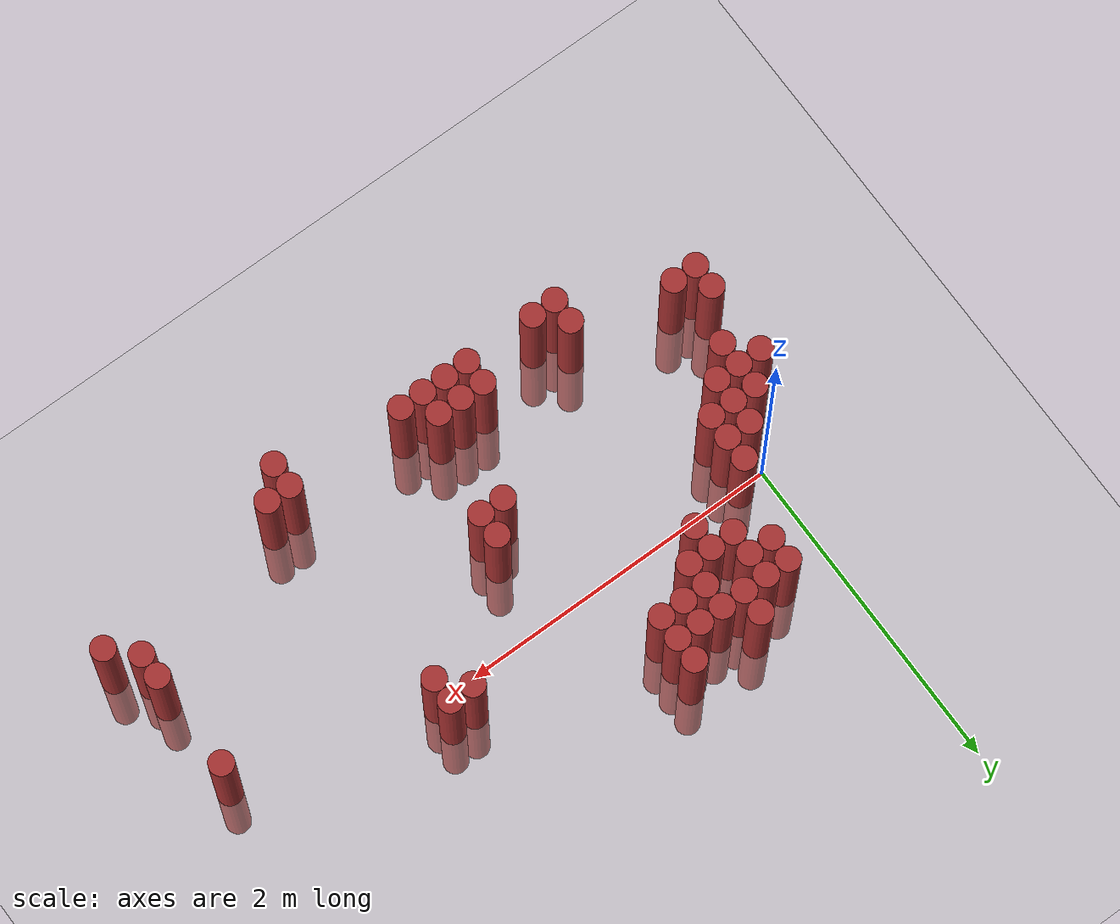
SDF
<sdf version="1.6">
 <world name="default">
  <model name="ground_plane">
   <static>1</static>
   <link name="link">
    <collision name="collision">
     <geometry><plane><normal>0 0 1</normal><size>100 100</size></plane></geometry>
     <surface><friction><ode><mu>100</mu><mu2>50</mu2></ode></friction></surface>
    </collision>
    <visual name="visual">
     <cast_shadows>0</cast_shadows>
     <geometry><plane><normal>0 0 1</normal><size>100 100</size></plane></geometry>
     <material>
      <script><uri>file://media/materials/scripts/gazebo.material</uri><name>Gazebo/Grey</name></script>
     </material>
    </visual>
   </link>
  </model>
  <model name="unit_cylinder_327">
   <static>1</static>
   <pose>-0.275000 -1.025000 0.000000 0.000000 0.000000 0.000000</pose>
   <link name="link">
    <inertial>
     <mass>1</mass>
     <inertia><ixx>0.145833</ixx><ixy>0</ixy><ixz>0</ixz><iyy>0.145833</iyy><iyz>0</iyz><izz>0.125</izz></inertia>
    </inertial>
    <collision name="collision">
     <geometry><cylinder><radius>0.075000</radius><length>1.5</length></cylinder></geometry>
    </collision>
    <visual name="visual">
     <geometry><cylinder><radius>0.075000</radius><length>1.5</length></cylinder></geometry>
     <material>
      <ambient>0.648000 0.192000 0.192000 1</ambient>
      <diffuse>0.648000 0.192000 0.192000 1</diffuse>
     </material>
     <material>
      <script><name>Gazebo/Grey</name><uri>file://media/materials/scripts/gazebo.material</uri></script>
     </material>
    </visual>
   </link>
  </model>
  <model name="unit_cylinder_328">
   <static>1</static>
   <pose>-0.275000 -0.875000 0.000000 0.000000 0.000000 0.000000</pose>
   <link name="link">
    <inertial>
     <mass>1</mass>
     <inertia><ixx>0.145833</ixx><ixy>0</ixy><ixz>0</ixz><iyy>0.145833</iyy><iyz>0</iyz><izz>0.125</izz></inertia>
    </inertial>
    <collision name="collision">
     <geometry><cylinder><radius>0.075000</radius><length>1.5</length></cylinder></geometry>
    </collision>
    <visual name="visual">
     <geometry><cylinder><radius>0.075000</radius><length>1.5</length></cylinder></geometry>
     <material>
      <ambient>0.648000 0.192000 0.192000 1</ambient>
      <diffuse>0.648000 0.192000 0.192000 1</diffuse>
     </material>
     <material>
      <script><name>Gazebo/Grey</name><uri>file://media/materials/scripts/gazebo.material</uri></script>
     </material>
    </visual>
   </link>
  </model>
  <model name="unit_cylinder_329">
   <static>1</static>
   <pose>-0.275000 -0.425000 0.000000 0.000000 0.000000 0.000000</pose>
   <link name="link">
    <inertial>
     <mass>1</mass>
     <inertia><ixx>0.145833</ixx><ixy>0</ixy><ixz>0</ixz><iyy>0.145833</iyy><iyz>0</iyz><izz>0.125</izz></inertia>
    </inertial>
    <collision name="collision">
     <geometry><cylinder><radius>0.075000</radius><length>1.5</length></cylinder></geometry>
    </collision>
    <visual name="visual">
     <geometry><cylinder><radius>0.075000</radius><length>1.5</length></cylinder></geometry>
     <material>
      <ambient>0.648000 0.192000 0.192000 1</ambient>
      <diffuse>0.648000 0.192000 0.192000 1</diffuse>
     </material>
     <material>
      <script><name>Gazebo/Grey</name><uri>file://media/materials/scripts/gazebo.material</uri></script>
     </material>
    </visual>
   </link>
  </model>
  <model name="unit_cylinder_330">
   <static>1</static>
   <pose>-0.125000 -1.025000 0.000000 0.000000 0.000000 0.000000</pose>
   <link name="link">
    <inertial>
     <mass>1</mass>
     <inertia><ixx>0.145833</ixx><ixy>0</ixy><ixz>0</ixz><iyy>0.145833</iyy><iyz>0</iyz><izz>0.125</izz></inertia>
    </inertial>
    <collision name="collision">
     <geometry><cylinder><radius>0.075000</radius><length>1.5</length></cylinder></geometry>
    </collision>
    <visual name="visual">
     <geometry><cylinder><radius>0.075000</radius><length>1.5</length></cylinder></geometry>
     <material>
      <ambient>0.648000 0.192000 0.192000 1</ambient>
      <diffuse>0.648000 0.192000 0.192000 1</diffuse>
     </material>
     <material>
      <script><name>Gazebo/Grey</name><uri>file://media/materials/scripts/gazebo.material</uri></script>
     </material>
    </visual>
   </link>
  </model>
  <model name="unit_cylinder_331">
   <static>1</static>
   <pose>-0.125000 -0.575000 0.000000 0.000000 0.000000 0.000000</pose>
   <link name="link">
    <inertial>
     <mass>1</mass>
     <inertia><ixx>0.145833</ixx><ixy>0</ixy><ixz>0</ixz><iyy>0.145833</iyy><iyz>0</iyz><izz>0.125</izz></inertia>
    </inertial>
    <collision name="collision">
     <geometry><cylinder><radius>0.075000</radius><length>1.5</length></cylinder></geometry>
    </collision>
    <visual name="visual">
     <geometry><cylinder><radius>0.075000</radius><length>1.5</length></cylinder></geometry>
     <material>
      <ambient>0.648000 0.192000 0.192000 1</ambient>
      <diffuse>0.648000 0.192000 0.192000 1</diffuse>
     </material>
     <material>
      <script><name>Gazebo/Grey</name><uri>file://media/materials/scripts/gazebo.material</uri></script>
     </material>
    </visual>
   </link>
  </model>
  <model name="unit_cylinder_332">
   <static>1</static>
   <pose>-0.125000 -0.425000 0.000000 0.000000 0.000000 0.000000</pose>
   <link name="link">
    <inertial>
     <mass>1</mass>
     <inertia><ixx>0.145833</ixx><ixy>0</ixy><ixz>0</ixz><iyy>0.145833</iyy><iyz>0</iyz><izz>0.125</izz></inertia>
    </inertial>
    <collision name="collision">
     <geometry><cylinder><radius>0.075000</radius><length>1.5</length></cylinder></geometry>
    </collision>
    <visual name="visual">
     <geometry><cylinder><radius>0.075000</radius><length>1.5</length></cylinder></geometry>
     <material>
      <ambient>0.648000 0.192000 0.192000 1</ambient>
      <diffuse>0.648000 0.192000 0.192000 1</diffuse>
     </material>
     <material>
      <script><name>Gazebo/Grey</name><uri>file://media/materials/scripts/gazebo.material</uri></script>
     </material>
    </visual>
   </link>
  </model>
  <model name="unit_cylinder_333">
   <static>1</static>
   <pose>-0.125000 -0.275000 0.000000 0.000000 0.000000 0.000000</pose>
   <link name="link">
    <inertial>
     <mass>1</mass>
     <inertia><ixx>0.145833</ixx><ixy>0</ixy><ixz>0</ixz><iyy>0.145833</iyy><iyz>0</iyz><izz>0.125</izz></inertia>
    </inertial>
    <collision name="collision">
     <geometry><cylinder><radius>0.075000</radius><length>1.5</length></cylinder></geometry>
    </collision>
    <visual name="visual">
     <geometry><cylinder><radius>0.075000</radius><length>1.5</length></cylinder></geometry>
     <material>
      <ambient>0.648000 0.192000 0.192000 1</ambient>
      <diffuse>0.648000 0.192000 0.192000 1</diffuse>
     </material>
     <material>
      <script><name>Gazebo/Grey</name><uri>file://media/materials/scripts/gazebo.material</uri></script>
     </material>
    </visual>
   </link>
  </model>
  <model name="unit_cylinder_334">
   <static>1</static>
   <pose>0.025000 -0.425000 0.000000 0.000000 0.000000 0.000000</pose>
   <link name="link">
    <inertial>
     <mass>1</mass>
     <inertia><ixx>0.145833</ixx><ixy>0</ixy><ixz>0</ixz><iyy>0.145833</iyy><iyz>0</iyz><izz>0.125</izz></inertia>
    </inertial>
    <collision name="collision">
     <geometry><cylinder><radius>0.075000</radius><length>1.5</length></cylinder></geometry>
    </collision>
    <visual name="visual">
     <geometry><cylinder><radius>0.075000</radius><length>1.5</length></cylinder></geometry>
     <material>
      <ambient>0.648000 0.192000 0.192000 1</ambient>
      <diffuse>0.648000 0.192000 0.192000 1</diffuse>
     </material>
     <material>
      <script><name>Gazebo/Grey</name><uri>file://media/materials/scripts/gazebo.material</uri></script>
     </material>
    </visual>
   </link>
  </model>
  <model name="unit_cylinder_335">
   <static>1</static>
   <pose>0.025000 -0.275000 0.000000 0.000000 0.000000 0.000000</pose>
   <link name="link">
    <inertial>
     <mass>1</mass>
     <inertia><ixx>0.145833</ixx><ixy>0</ixy><ixz>0</ixz><iyy>0.145833</iyy><iyz>0</iyz><izz>0.125</izz></inertia>
    </inertial>
    <collision name="collision">
     <geometry><cylinder><radius>0.075000</radius><length>1.5</length></cylinder></geometry>
    </collision>
    <visual name="visual">
     <geometry><cylinder><radius>0.075000</radius><length>1.5</length></cylinder></geometry>
     <material>
      <ambient>0.648000 0.192000 0.192000 1</ambient>
      <diffuse>0.648000 0.192000 0.192000 1</diffuse>
     </material>
     <material>
      <script><name>Gazebo/Grey</name><uri>file://media/materials/scripts/gazebo.material</uri></script>
     </material>
    </visual>
   </link>
  </model>
  <model name="unit_cylinder_336">
   <static>1</static>
   <pose>0.025000 -0.125000 0.000000 0.000000 0.000000 0.000000</pose>
   <link name="link">
    <inertial>
     <mass>1</mass>
     <inertia><ixx>0.145833</ixx><ixy>0</ixy><ixz>0</ixz><iyy>0.145833</iyy><iyz>0</iyz><izz>0.125</izz></inertia>
    </inertial>
    <collision name="collision">
     <geometry><cylinder><radius>0.075000</radius><length>1.5</length></cylinder></geometry>
    </collision>
    <visual name="visual">
     <geometry><cylinder><radius>0.075000</radius><length>1.5</length></cylinder></geometry>
     <material>
      <ambient>0.648000 0.192000 0.192000 1</ambient>
      <diffuse>0.648000 0.192000 0.192000 1</diffuse>
     </material>
     <material>
      <script><name>Gazebo/Grey</name><uri>file://media/materials/scripts/gazebo.material</uri></script>
     </material>
    </visual>
   </link>
  </model>
  <model name="unit_cylinder_337">
   <static>1</static>
   <pose>0.175000 -0.275000 0.000000 0.000000 0.000000 0.000000</pose>
   <link name="link">
    <inertial>
     <mass>1</mass>
     <inertia><ixx>0.145833</ixx><ixy>0</ixy><ixz>0</ixz><iyy>0.145833</iyy><iyz>0</iyz><izz>0.125</izz></inertia>
    </inertial>
    <collision name="collision">
     <geometry><cylinder><radius>0.075000</radius><length>1.5</length></cylinder></geometry>
    </collision>
    <visual name="visual">
     <geometry><cylinder><radius>0.075000</radius><length>1.5</length></cylinder></geometry>
     <material>
      <ambient>0.648000 0.192000 0.192000 1</ambient>
      <diffuse>0.648000 0.192000 0.192000 1</diffuse>
     </material>
     <material>
      <script><name>Gazebo/Grey</name><uri>file://media/materials/scripts/gazebo.material</uri></script>
     </material>
    </visual>
   </link>
  </model>
  <model name="unit_cylinder_338">
   <static>1</static>
   <pose>0.175000 -0.125000 0.000000 0.000000 0.000000 0.000000</pose>
   <link name="link">
    <inertial>
     <mass>1</mass>
     <inertia><ixx>0.145833</ixx><ixy>0</ixy><ixz>0</ixz><iyy>0.145833</iyy><iyz>0</iyz><izz>0.125</izz></inertia>
    </inertial>
    <collision name="collision">
     <geometry><cylinder><radius>0.075000</radius><length>1.5</length></cylinder></geometry>
    </collision>
    <visual name="visual">
     <geometry><cylinder><radius>0.075000</radius><length>1.5</length></cylinder></geometry>
     <material>
      <ambient>0.648000 0.192000 0.192000 1</ambient>
      <diffuse>0.648000 0.192000 0.192000 1</diffuse>
     </material>
     <material>
      <script><name>Gazebo/Grey</name><uri>file://media/materials/scripts/gazebo.material</uri></script>
     </material>
    </visual>
   </link>
  </model>
  <model name="unit_cylinder_339">
   <static>1</static>
   <pose>0.175000 0.025000 0.000000 0.000000 0.000000 0.000000</pose>
   <link name="link">
    <inertial>
     <mass>1</mass>
     <inertia><ixx>0.145833</ixx><ixy>0</ixy><ixz>0</ixz><iyy>0.145833</iyy><iyz>0</iyz><izz>0.125</izz></inertia>
    </inertial>
    <collision name="collision">
     <geometry><cylinder><radius>0.075000</radius><length>1.5</length></cylinder></geometry>
    </collision>
    <visual name="visual">
     <geometry><cylinder><radius>0.075000</radius><length>1.5</length></cylinder></geometry>
     <material>
      <ambient>0.648000 0.192000 0.192000 1</ambient>
      <diffuse>0.648000 0.192000 0.192000 1</diffuse>
     </material>
     <material>
      <script><name>Gazebo/Grey</name><uri>file://media/materials/scripts/gazebo.material</uri></script>
     </material>
    </visual>
   </link>
  </model>
  <model name="unit_cylinder_340">
   <static>1</static>
   <pose>0.325000 0.475000 0.000000 0.000000 0.000000 0.000000</pose>
   <link name="link">
    <inertial>
     <mass>1</mass>
     <inertia><ixx>0.145833</ixx><ixy>0</ixy><ixz>0</ixz><iyy>0.145833</iyy><iyz>0</iyz><izz>0.125</izz></inertia>
    </inertial>
    <collision name="collision">
     <geometry><cylinder><radius>0.075000</radius><length>1.5</length></cylinder></geometry>
    </collision>
    <visual name="visual">
     <geometry><cylinder><radius>0.075000</radius><length>1.5</length></cylinder></geometry>
     <material>
      <ambient>0.648000 0.192000 0.192000 1</ambient>
      <diffuse>0.648000 0.192000 0.192000 1</diffuse>
     </material>
     <material>
      <script><name>Gazebo/Grey</name><uri>file://media/materials/scripts/gazebo.material</uri></script>
     </material>
    </visual>
   </link>
  </model>
  <model name="unit_cylinder_341">
   <static>1</static>
   <pose>0.325000 0.625000 0.000000 0.000000 0.000000 0.000000</pose>
   <link name="link">
    <inertial>
     <mass>1</mass>
     <inertia><ixx>0.145833</ixx><ixy>0</ixy><ixz>0</ixz><iyy>0.145833</iyy><iyz>0</iyz><izz>0.125</izz></inertia>
    </inertial>
    <collision name="collision">
     <geometry><cylinder><radius>0.075000</radius><length>1.5</length></cylinder></geometry>
    </collision>
    <visual name="visual">
     <geometry><cylinder><radius>0.075000</radius><length>1.5</length></cylinder></geometry>
     <material>
      <ambient>0.648000 0.192000 0.192000 1</ambient>
      <diffuse>0.648000 0.192000 0.192000 1</diffuse>
     </material>
     <material>
      <script><name>Gazebo/Grey</name><uri>file://media/materials/scripts/gazebo.material</uri></script>
     </material>
    </visual>
   </link>
  </model>
  <model name="unit_cylinder_345">
   <static>1</static>
   <pose>0.475000 -1.325000 0.000000 0.000000 0.000000 0.000000</pose>
   <link name="link">
    <inertial>
     <mass>1</mass>
     <inertia><ixx>0.145833</ixx><ixy>0</ixy><ixz>0</ixz><iyy>0.145833</iyy><iyz>0</iyz><izz>0.125</izz></inertia>
    </inertial>
    <collision name="collision">
     <geometry><cylinder><radius>0.075000</radius><length>1.5</length></cylinder></geometry>
    </collision>
    <visual name="visual">
     <geometry><cylinder><radius>0.075000</radius><length>1.5</length></cylinder></geometry>
     <material>
      <ambient>0.648000 0.192000 0.192000 1</ambient>
      <diffuse>0.648000 0.192000 0.192000 1</diffuse>
     </material>
     <material>
      <script><name>Gazebo/Grey</name><uri>file://media/materials/scripts/gazebo.material</uri></script>
     </material>
    </visual>
   </link>
  </model>
  <model name="unit_cylinder_346">
   <static>1</static>
   <pose>0.475000 -1.175000 0.000000 0.000000 0.000000 0.000000</pose>
   <link name="link">
    <inertial>
     <mass>1</mass>
     <inertia><ixx>0.145833</ixx><ixy>0</ixy><ixz>0</ixz><iyy>0.145833</iyy><iyz>0</iyz><izz>0.125</izz></inertia>
    </inertial>
    <collision name="collision">
     <geometry><cylinder><radius>0.075000</radius><length>1.5</length></cylinder></geometry>
    </collision>
    <visual name="visual">
     <geometry><cylinder><radius>0.075000</radius><length>1.5</length></cylinder></geometry>
     <material>
      <ambient>0.648000 0.192000 0.192000 1</ambient>
      <diffuse>0.648000 0.192000 0.192000 1</diffuse>
     </material>
     <material>
      <script><name>Gazebo/Grey</name><uri>file://media/materials/scripts/gazebo.material</uri></script>
     </material>
    </visual>
   </link>
  </model>
  <model name="unit_cylinder_347">
   <static>1</static>
   <pose>0.475000 0.325000 0.000000 0.000000 0.000000 0.000000</pose>
   <link name="link">
    <inertial>
     <mass>1</mass>
     <inertia><ixx>0.145833</ixx><ixy>0</ixy><ixz>0</ixz><iyy>0.145833</iyy><iyz>0</iyz><izz>0.125</izz></inertia>
    </inertial>
    <collision name="collision">
     <geometry><cylinder><radius>0.075000</radius><length>1.5</length></cylinder></geometry>
    </collision>
    <visual name="visual">
     <geometry><cylinder><radius>0.075000</radius><length>1.5</length></cylinder></geometry>
     <material>
      <ambient>0.648000 0.192000 0.192000 1</ambient>
      <diffuse>0.648000 0.192000 0.192000 1</diffuse>
     </material>
     <material>
      <script><name>Gazebo/Grey</name><uri>file://media/materials/scripts/gazebo.material</uri></script>
     </material>
    </visual>
   </link>
  </model>
  <model name="unit_cylinder_348">
   <static>1</static>
   <pose>0.475000 0.475000 0.000000 0.000000 0.000000 0.000000</pose>
   <link name="link">
    <inertial>
     <mass>1</mass>
     <inertia><ixx>0.145833</ixx><ixy>0</ixy><ixz>0</ixz><iyy>0.145833</iyy><iyz>0</iyz><izz>0.125</izz></inertia>
    </inertial>
    <collision name="collision">
     <geometry><cylinder><radius>0.075000</radius><length>1.5</length></cylinder></geometry>
    </collision>
    <visual name="visual">
     <geometry><cylinder><radius>0.075000</radius><length>1.5</length></cylinder></geometry>
     <material>
      <ambient>0.648000 0.192000 0.192000 1</ambient>
      <diffuse>0.648000 0.192000 0.192000 1</diffuse>
     </material>
     <material>
      <script><name>Gazebo/Grey</name><uri>file://media/materials/scripts/gazebo.material</uri></script>
     </material>
    </visual>
   </link>
  </model>
  <model name="unit_cylinder_349">
   <static>1</static>
   <pose>0.475000 0.625000 0.000000 0.000000 0.000000 0.000000</pose>
   <link name="link">
    <inertial>
     <mass>1</mass>
     <inertia><ixx>0.145833</ixx><ixy>0</ixy><ixz>0</ixz><iyy>0.145833</iyy><iyz>0</iyz><izz>0.125</izz></inertia>
    </inertial>
    <collision name="collision">
     <geometry><cylinder><radius>0.075000</radius><length>1.5</length></cylinder></geometry>
    </collision>
    <visual name="visual">
     <geometry><cylinder><radius>0.075000</radius><length>1.5</length></cylinder></geometry>
     <material>
      <ambient>0.648000 0.192000 0.192000 1</ambient>
      <diffuse>0.648000 0.192000 0.192000 1</diffuse>
     </material>
     <material>
      <script><name>Gazebo/Grey</name><uri>file://media/materials/scripts/gazebo.material</uri></script>
     </material>
    </visual>
   </link>
  </model>
  <model name="unit_cylinder_354">
   <static>1</static>
   <pose>0.625000 -1.325000 0.000000 0.000000 0.000000 0.000000</pose>
   <link name="link">
    <inertial>
     <mass>1</mass>
     <inertia><ixx>0.145833</ixx><ixy>0</ixy><ixz>0</ixz><iyy>0.145833</iyy><iyz>0</iyz><izz>0.125</izz></inertia>
    </inertial>
    <collision name="collision">
     <geometry><cylinder><radius>0.075000</radius><length>1.5</length></cylinder></geometry>
    </collision>
    <visual name="visual">
     <geometry><cylinder><radius>0.075000</radius><length>1.5</length></cylinder></geometry>
     <material>
      <ambient>0.648000 0.192000 0.192000 1</ambient>
      <diffuse>0.648000 0.192000 0.192000 1</diffuse>
     </material>
     <material>
      <script><name>Gazebo/Grey</name><uri>file://media/materials/scripts/gazebo.material</uri></script>
     </material>
    </visual>
   </link>
  </model>
  <model name="unit_cylinder_355">
   <static>1</static>
   <pose>0.625000 0.175000 0.000000 0.000000 0.000000 0.000000</pose>
   <link name="link">
    <inertial>
     <mass>1</mass>
     <inertia><ixx>0.145833</ixx><ixy>0</ixy><ixz>0</ixz><iyy>0.145833</iyy><iyz>0</iyz><izz>0.125</izz></inertia>
    </inertial>
    <collision name="collision">
     <geometry><cylinder><radius>0.075000</radius><length>1.5</length></cylinder></geometry>
    </collision>
    <visual name="visual">
     <geometry><cylinder><radius>0.075000</radius><length>1.5</length></cylinder></geometry>
     <material>
      <ambient>0.648000 0.192000 0.192000 1</ambient>
      <diffuse>0.648000 0.192000 0.192000 1</diffuse>
     </material>
     <material>
      <script><name>Gazebo/Grey</name><uri>file://media/materials/scripts/gazebo.material</uri></script>
     </material>
    </visual>
   </link>
  </model>
  <model name="unit_cylinder_356">
   <static>1</static>
   <pose>0.625000 0.325000 0.000000 0.000000 0.000000 0.000000</pose>
   <link name="link">
    <inertial>
     <mass>1</mass>
     <inertia><ixx>0.145833</ixx><ixy>0</ixy><ixz>0</ixz><iyy>0.145833</iyy><iyz>0</iyz><izz>0.125</izz></inertia>
    </inertial>
    <collision name="collision">
     <geometry><cylinder><radius>0.075000</radius><length>1.5</length></cylinder></geometry>
    </collision>
    <visual name="visual">
     <geometry><cylinder><radius>0.075000</radius><length>1.5</length></cylinder></geometry>
     <material>
      <ambient>0.648000 0.192000 0.192000 1</ambient>
      <diffuse>0.648000 0.192000 0.192000 1</diffuse>
     </material>
     <material>
      <script><name>Gazebo/Grey</name><uri>file://media/materials/scripts/gazebo.material</uri></script>
     </material>
    </visual>
   </link>
  </model>
  <model name="unit_cylinder_357">
   <static>1</static>
   <pose>0.625000 0.625000 0.000000 0.000000 0.000000 0.000000</pose>
   <link name="link">
    <inertial>
     <mass>1</mass>
     <inertia><ixx>0.145833</ixx><ixy>0</ixy><ixz>0</ixz><iyy>0.145833</iyy><iyz>0</iyz><izz>0.125</izz></inertia>
    </inertial>
    <collision name="collision">
     <geometry><cylinder><radius>0.075000</radius><length>1.5</length></cylinder></geometry>
    </collision>
    <visual name="visual">
     <geometry><cylinder><radius>0.075000</radius><length>1.5</length></cylinder></geometry>
     <material>
      <ambient>0.648000 0.192000 0.192000 1</ambient>
      <diffuse>0.648000 0.192000 0.192000 1</diffuse>
     </material>
     <material>
      <script><name>Gazebo/Grey</name><uri>file://media/materials/scripts/gazebo.material</uri></script>
     </material>
    </visual>
   </link>
  </model>
  <model name="unit_cylinder_358">
   <static>1</static>
   <pose>0.625000 0.775000 0.000000 0.000000 0.000000 0.000000</pose>
   <link name="link">
    <inertial>
     <mass>1</mass>
     <inertia><ixx>0.145833</ixx><ixy>0</ixy><ixz>0</ixz><iyy>0.145833</iyy><iyz>0</iyz><izz>0.125</izz></inertia>
    </inertial>
    <collision name="collision">
     <geometry><cylinder><radius>0.075000</radius><length>1.5</length></cylinder></geometry>
    </collision>
    <visual name="visual">
     <geometry><cylinder><radius>0.075000</radius><length>1.5</length></cylinder></geometry>
     <material>
      <ambient>0.648000 0.192000 0.192000 1</ambient>
      <diffuse>0.648000 0.192000 0.192000 1</diffuse>
     </material>
     <material>
      <script><name>Gazebo/Grey</name><uri>file://media/materials/scripts/gazebo.material</uri></script>
     </material>
    </visual>
   </link>
  </model>
  <model name="unit_cylinder_361">
   <static>1</static>
   <pose>0.775000 0.325000 0.000000 0.000000 0.000000 0.000000</pose>
   <link name="link">
    <inertial>
     <mass>1</mass>
     <inertia><ixx>0.145833</ixx><ixy>0</ixy><ixz>0</ixz><iyy>0.145833</iyy><iyz>0</iyz><izz>0.125</izz></inertia>
    </inertial>
    <collision name="collision">
     <geometry><cylinder><radius>0.075000</radius><length>1.5</length></cylinder></geometry>
    </collision>
    <visual name="visual">
     <geometry><cylinder><radius>0.075000</radius><length>1.5</length></cylinder></geometry>
     <material>
      <ambient>0.648000 0.192000 0.192000 1</ambient>
      <diffuse>0.648000 0.192000 0.192000 1</diffuse>
     </material>
     <material>
      <script><name>Gazebo/Grey</name><uri>file://media/materials/scripts/gazebo.material</uri></script>
     </material>
    </visual>
   </link>
  </model>
  <model name="unit_cylinder_362">
   <static>1</static>
   <pose>0.775000 0.475000 0.000000 0.000000 0.000000 0.000000</pose>
   <link name="link">
    <inertial>
     <mass>1</mass>
     <inertia><ixx>0.145833</ixx><ixy>0</ixy><ixz>0</ixz><iyy>0.145833</iyy><iyz>0</iyz><izz>0.125</izz></inertia>
    </inertial>
    <collision name="collision">
     <geometry><cylinder><radius>0.075000</radius><length>1.5</length></cylinder></geometry>
    </collision>
    <visual name="visual">
     <geometry><cylinder><radius>0.075000</radius><length>1.5</length></cylinder></geometry>
     <material>
      <ambient>0.648000 0.192000 0.192000 1</ambient>
      <diffuse>0.648000 0.192000 0.192000 1</diffuse>
     </material>
     <material>
      <script><name>Gazebo/Grey</name><uri>file://media/materials/scripts/gazebo.material</uri></script>
     </material>
    </visual>
   </link>
  </model>
  <model name="unit_cylinder_363">
   <static>1</static>
   <pose>0.775000 0.625000 0.000000 0.000000 0.000000 0.000000</pose>
   <link name="link">
    <inertial>
     <mass>1</mass>
     <inertia><ixx>0.145833</ixx><ixy>0</ixy><ixz>0</ixz><iyy>0.145833</iyy><iyz>0</iyz><izz>0.125</izz></inertia>
    </inertial>
    <collision name="collision">
     <geometry><cylinder><radius>0.075000</radius><length>1.5</length></cylinder></geometry>
    </collision>
    <visual name="visual">
     <geometry><cylinder><radius>0.075000</radius><length>1.5</length></cylinder></geometry>
     <material>
      <ambient>0.648000 0.192000 0.192000 1</ambient>
      <diffuse>0.648000 0.192000 0.192000 1</diffuse>
     </material>
     <material>
      <script><name>Gazebo/Grey</name><uri>file://media/materials/scripts/gazebo.material</uri></script>
     </material>
    </visual>
   </link>
  </model>
  <model name="unit_cylinder_364">
   <static>1</static>
   <pose>0.925000 0.475000 0.000000 0.000000 0.000000 0.000000</pose>
   <link name="link">
    <inertial>
     <mass>1</mass>
     <inertia><ixx>0.145833</ixx><ixy>0</ixy><ixz>0</ixz><iyy>0.145833</iyy><iyz>0</iyz><izz>0.125</izz></inertia>
    </inertial>
    <collision name="collision">
     <geometry><cylinder><radius>0.075000</radius><length>1.5</length></cylinder></geometry>
    </collision>
    <visual name="visual">
     <geometry><cylinder><radius>0.075000</radius><length>1.5</length></cylinder></geometry>
     <material>
      <ambient>0.648000 0.192000 0.192000 1</ambient>
      <diffuse>0.648000 0.192000 0.192000 1</diffuse>
     </material>
     <material>
      <script><name>Gazebo/Grey</name><uri>file://media/materials/scripts/gazebo.material</uri></script>
     </material>
    </visual>
   </link>
  </model>
  <model name="unit_cylinder_365">
   <static>1</static>
   <pose>0.925000 0.625000 0.000000 0.000000 0.000000 0.000000</pose>
   <link name="link">
    <inertial>
     <mass>1</mass>
     <inertia><ixx>0.145833</ixx><ixy>0</ixy><ixz>0</ixz><iyy>0.145833</iyy><iyz>0</iyz><izz>0.125</izz></inertia>
    </inertial>
    <collision name="collision">
     <geometry><cylinder><radius>0.075000</radius><length>1.5</length></cylinder></geometry>
    </collision>
    <visual name="visual">
     <geometry><cylinder><radius>0.075000</radius><length>1.5</length></cylinder></geometry>
     <material>
      <ambient>0.648000 0.192000 0.192000 1</ambient>
      <diffuse>0.648000 0.192000 0.192000 1</diffuse>
     </material>
     <material>
      <script><name>Gazebo/Grey</name><uri>file://media/materials/scripts/gazebo.material</uri></script>
     </material>
    </visual>
   </link>
  </model>
  <model name="unit_cylinder_366">
   <static>1</static>
   <pose>1.075000 -1.325000 0.000000 0.000000 0.000000 0.000000</pose>
   <link name="link">
    <inertial>
     <mass>1</mass>
     <inertia><ixx>0.145833</ixx><ixy>0</ixy><ixz>0</ixz><iyy>0.145833</iyy><iyz>0</iyz><izz>0.125</izz></inertia>
    </inertial>
    <collision name="collision">
     <geometry><cylinder><radius>0.075000</radius><length>1.5</length></cylinder></geometry>
    </collision>
    <visual name="visual">
     <geometry><cylinder><radius>0.075000</radius><length>1.5</length></cylinder></geometry>
     <material>
      <ambient>0.648000 0.192000 0.192000 1</ambient>
      <diffuse>0.648000 0.192000 0.192000 1</diffuse>
     </material>
     <material>
      <script><name>Gazebo/Grey</name><uri>file://media/materials/scripts/gazebo.material</uri></script>
     </material>
    </visual>
   </link>
  </model>
  <model name="unit_cylinder_367">
   <static>1</static>
   <pose>1.075000 -1.175000 0.000000 0.000000 0.000000 0.000000</pose>
   <link name="link">
    <inertial>
     <mass>1</mass>
     <inertia><ixx>0.145833</ixx><ixy>0</ixy><ixz>0</ixz><iyy>0.145833</iyy><iyz>0</iyz><izz>0.125</izz></inertia>
    </inertial>
    <collision name="collision">
     <geometry><cylinder><radius>0.075000</radius><length>1.5</length></cylinder></geometry>
    </collision>
    <visual name="visual">
     <geometry><cylinder><radius>0.075000</radius><length>1.5</length></cylinder></geometry>
     <material>
      <ambient>0.648000 0.192000 0.192000 1</ambient>
      <diffuse>0.648000 0.192000 0.192000 1</diffuse>
     </material>
     <material>
      <script><name>Gazebo/Grey</name><uri>file://media/materials/scripts/gazebo.material</uri></script>
     </material>
    </visual>
   </link>
  </model>
  <model name="unit_cylinder_368">
   <static>1</static>
   <pose>1.075000 0.475000 0.000000 0.000000 0.000000 0.000000</pose>
   <link name="link">
    <inertial>
     <mass>1</mass>
     <inertia><ixx>0.145833</ixx><ixy>0</ixy><ixz>0</ixz><iyy>0.145833</iyy><iyz>0</iyz><izz>0.125</izz></inertia>
    </inertial>
    <collision name="collision">
     <geometry><cylinder><radius>0.075000</radius><length>1.5</length></cylinder></geometry>
    </collision>
    <visual name="visual">
     <geometry><cylinder><radius>0.075000</radius><length>1.5</length></cylinder></geometry>
     <material>
      <ambient>0.648000 0.192000 0.192000 1</ambient>
      <diffuse>0.648000 0.192000 0.192000 1</diffuse>
     </material>
     <material>
      <script><name>Gazebo/Grey</name><uri>file://media/materials/scripts/gazebo.material</uri></script>
     </material>
    </visual>
   </link>
  </model>
  <model name="unit_cylinder_369">
   <static>1</static>
   <pose>1.075000 0.625000 0.000000 0.000000 0.000000 0.000000</pose>
   <link name="link">
    <inertial>
     <mass>1</mass>
     <inertia><ixx>0.145833</ixx><ixy>0</ixy><ixz>0</ixz><iyy>0.145833</iyy><iyz>0</iyz><izz>0.125</izz></inertia>
    </inertial>
    <collision name="collision">
     <geometry><cylinder><radius>0.075000</radius><length>1.5</length></cylinder></geometry>
    </collision>
    <visual name="visual">
     <geometry><cylinder><radius>0.075000</radius><length>1.5</length></cylinder></geometry>
     <material>
      <ambient>0.648000 0.192000 0.192000 1</ambient>
      <diffuse>0.648000 0.192000 0.192000 1</diffuse>
     </material>
     <material>
      <script><name>Gazebo/Grey</name><uri>file://media/materials/scripts/gazebo.material</uri></script>
     </material>
    </visual>
   </link>
  </model>
  <model name="unit_cylinder_370">
   <static>1</static>
   <pose>1.075000 0.775000 0.000000 0.000000 0.000000 0.000000</pose>
   <link name="link">
    <inertial>
     <mass>1</mass>
     <inertia><ixx>0.145833</ixx><ixy>0</ixy><ixz>0</ixz><iyy>0.145833</iyy><iyz>0</iyz><izz>0.125</izz></inertia>
    </inertial>
    <collision name="collision">
     <geometry><cylinder><radius>0.075000</radius><length>1.5</length></cylinder></geometry>
    </collision>
    <visual name="visual">
     <geometry><cylinder><radius>0.075000</radius><length>1.5</length></cylinder></geometry>
     <material>
      <ambient>0.648000 0.192000 0.192000 1</ambient>
      <diffuse>0.648000 0.192000 0.192000 1</diffuse>
     </material>
     <material>
      <script><name>Gazebo/Grey</name><uri>file://media/materials/scripts/gazebo.material</uri></script>
     </material>
    </visual>
   </link>
  </model>
  <model name="unit_cylinder_371">
   <static>1</static>
   <pose>1.225000 -1.325000 0.000000 0.000000 0.000000 0.000000</pose>
   <link name="link">
    <inertial>
     <mass>1</mass>
     <inertia><ixx>0.145833</ixx><ixy>0</ixy><ixz>0</ixz><iyy>0.145833</iyy><iyz>0</iyz><izz>0.125</izz></inertia>
    </inertial>
    <collision name="collision">
     <geometry><cylinder><radius>0.075000</radius><length>1.5</length></cylinder></geometry>
    </collision>
    <visual name="visual">
     <geometry><cylinder><radius>0.075000</radius><length>1.5</length></cylinder></geometry>
     <material>
      <ambient>0.648000 0.192000 0.192000 1</ambient>
      <diffuse>0.648000 0.192000 0.192000 1</diffuse>
     </material>
     <material>
      <script><name>Gazebo/Grey</name><uri>file://media/materials/scripts/gazebo.material</uri></script>
     </material>
    </visual>
   </link>
  </model>
  <model name="unit_cylinder_372">
   <static>1</static>
   <pose>1.225000 -1.175000 0.000000 0.000000 0.000000 0.000000</pose>
   <link name="link">
    <inertial>
     <mass>1</mass>
     <inertia><ixx>0.145833</ixx><ixy>0</ixy><ixz>0</ixz><iyy>0.145833</iyy><iyz>0</iyz><izz>0.125</izz></inertia>
    </inertial>
    <collision name="collision">
     <geometry><cylinder><radius>0.075000</radius><length>1.5</length></cylinder></geometry>
    </collision>
    <visual name="visual">
     <geometry><cylinder><radius>0.075000</radius><length>1.5</length></cylinder></geometry>
     <material>
      <ambient>0.648000 0.192000 0.192000 1</ambient>
      <diffuse>0.648000 0.192000 0.192000 1</diffuse>
     </material>
     <material>
      <script><name>Gazebo/Grey</name><uri>file://media/materials/scripts/gazebo.material</uri></script>
     </material>
    </visual>
   </link>
  </model>
  <model name="unit_cylinder_373">
   <static>1</static>
   <pose>1.375000 -1.325000 0.000000 0.000000 0.000000 0.000000</pose>
   <link name="link">
    <inertial>
     <mass>1</mass>
     <inertia><ixx>0.145833</ixx><ixy>0</ixy><ixz>0</ixz><iyy>0.145833</iyy><iyz>0</iyz><izz>0.125</izz></inertia>
    </inertial>
    <collision name="collision">
     <geometry><cylinder><radius>0.075000</radius><length>1.5</length></cylinder></geometry>
    </collision>
    <visual name="visual">
     <geometry><cylinder><radius>0.075000</radius><length>1.5</length></cylinder></geometry>
     <material>
      <ambient>0.648000 0.192000 0.192000 1</ambient>
      <diffuse>0.648000 0.192000 0.192000 1</diffuse>
     </material>
     <material>
      <script><name>Gazebo/Grey</name><uri>file://media/materials/scripts/gazebo.material</uri></script>
     </material>
    </visual>
   </link>
  </model>
  <model name="unit_cylinder_374">
   <static>1</static>
   <pose>1.375000 -1.175000 0.000000 0.000000 0.000000 0.000000</pose>
   <link name="link">
    <inertial>
     <mass>1</mass>
     <inertia><ixx>0.145833</ixx><ixy>0</ixy><ixz>0</ixz><iyy>0.145833</iyy><iyz>0</iyz><izz>0.125</izz></inertia>
    </inertial>
    <collision name="collision">
     <geometry><cylinder><radius>0.075000</radius><length>1.5</length></cylinder></geometry>
    </collision>
    <visual name="visual">
     <geometry><cylinder><radius>0.075000</radius><length>1.5</length></cylinder></geometry>
     <material>
      <ambient>0.648000 0.192000 0.192000 1</ambient>
      <diffuse>0.648000 0.192000 0.192000 1</diffuse>
     </material>
     <material>
      <script><name>Gazebo/Grey</name><uri>file://media/materials/scripts/gazebo.material</uri></script>
     </material>
    </visual>
   </link>
  </model>
  <model name="unit_cylinder_375">
   <static>1</static>
   <pose>1.375000 -0.575000 0.000000 0.000000 0.000000 0.000000</pose>
   <link name="link">
    <inertial>
     <mass>1</mass>
     <inertia><ixx>0.145833</ixx><ixy>0</ixy><ixz>0</ixz><iyy>0.145833</iyy><iyz>0</iyz><izz>0.125</izz></inertia>
    </inertial>
    <collision name="collision">
     <geometry><cylinder><radius>0.075000</radius><length>1.5</length></cylinder></geometry>
    </collision>
    <visual name="visual">
     <geometry><cylinder><radius>0.075000</radius><length>1.5</length></cylinder></geometry>
     <material>
      <ambient>0.648000 0.192000 0.192000 1</ambient>
      <diffuse>0.648000 0.192000 0.192000 1</diffuse>
     </material>
     <material>
      <script><name>Gazebo/Grey</name><uri>file://media/materials/scripts/gazebo.material</uri></script>
     </material>
    </visual>
   </link>
  </model>
  <model name="unit_cylinder_376">
   <static>1</static>
   <pose>1.525000 -1.325000 0.000000 0.000000 0.000000 0.000000</pose>
   <link name="link">
    <inertial>
     <mass>1</mass>
     <inertia><ixx>0.145833</ixx><ixy>0</ixy><ixz>0</ixz><iyy>0.145833</iyy><iyz>0</iyz><izz>0.125</izz></inertia>
    </inertial>
    <collision name="collision">
     <geometry><cylinder><radius>0.075000</radius><length>1.5</length></cylinder></geometry>
    </collision>
    <visual name="visual">
     <geometry><cylinder><radius>0.075000</radius><length>1.5</length></cylinder></geometry>
     <material>
      <ambient>0.648000 0.192000 0.192000 1</ambient>
      <diffuse>0.648000 0.192000 0.192000 1</diffuse>
     </material>
     <material>
      <script><name>Gazebo/Grey</name><uri>file://media/materials/scripts/gazebo.material</uri></script>
     </material>
    </visual>
   </link>
  </model>
  <model name="unit_cylinder_377">
   <static>1</static>
   <pose>1.525000 -0.575000 0.000000 0.000000 0.000000 0.000000</pose>
   <link name="link">
    <inertial>
     <mass>1</mass>
     <inertia><ixx>0.145833</ixx><ixy>0</ixy><ixz>0</ixz><iyy>0.145833</iyy><iyz>0</iyz><izz>0.125</izz></inertia>
    </inertial>
    <collision name="collision">
     <geometry><cylinder><radius>0.075000</radius><length>1.5</length></cylinder></geometry>
    </collision>
    <visual name="visual">
     <geometry><cylinder><radius>0.075000</radius><length>1.5</length></cylinder></geometry>
     <material>
      <ambient>0.648000 0.192000 0.192000 1</ambient>
      <diffuse>0.648000 0.192000 0.192000 1</diffuse>
     </material>
     <material>
      <script><name>Gazebo/Grey</name><uri>file://media/materials/scripts/gazebo.material</uri></script>
     </material>
    </visual>
   </link>
  </model>
  <model name="unit_cylinder_378">
   <static>1</static>
   <pose>1.525000 -0.425000 0.000000 0.000000 0.000000 0.000000</pose>
   <link name="link">
    <inertial>
     <mass>1</mass>
     <inertia><ixx>0.145833</ixx><ixy>0</ixy><ixz>0</ixz><iyy>0.145833</iyy><iyz>0</iyz><izz>0.125</izz></inertia>
    </inertial>
    <collision name="collision">
     <geometry><cylinder><radius>0.075000</radius><length>1.5</length></cylinder></geometry>
    </collision>
    <visual name="visual">
     <geometry><cylinder><radius>0.075000</radius><length>1.5</length></cylinder></geometry>
     <material>
      <ambient>0.648000 0.192000 0.192000 1</ambient>
      <diffuse>0.648000 0.192000 0.192000 1</diffuse>
     </material>
     <material>
      <script><name>Gazebo/Grey</name><uri>file://media/materials/scripts/gazebo.material</uri></script>
     </material>
    </visual>
   </link>
  </model>
  <model name="unit_cylinder_384">
   <static>1</static>
   <pose>2.125000 0.175000 0.000000 0.000000 0.000000 0.000000</pose>
   <link name="link">
    <inertial>
     <mass>1</mass>
     <inertia><ixx>0.145833</ixx><ixy>0</ixy><ixz>0</ixz><iyy>0.145833</iyy><iyz>0</iyz><izz>0.125</izz></inertia>
    </inertial>
    <collision name="collision">
     <geometry><cylinder><radius>0.075000</radius><length>1.5</length></cylinder></geometry>
    </collision>
    <visual name="visual">
     <geometry><cylinder><radius>0.075000</radius><length>1.5</length></cylinder></geometry>
     <material>
      <ambient>0.648000 0.192000 0.192000 1</ambient>
      <diffuse>0.648000 0.192000 0.192000 1</diffuse>
     </material>
     <material>
      <script><name>Gazebo/Grey</name><uri>file://media/materials/scripts/gazebo.material</uri></script>
     </material>
    </visual>
   </link>
  </model>
  <model name="unit_cylinder_387">
   <static>1</static>
   <pose>2.275000 -1.475000 0.000000 0.000000 0.000000 0.000000</pose>
   <link name="link">
    <inertial>
     <mass>1</mass>
     <inertia><ixx>0.145833</ixx><ixy>0</ixy><ixz>0</ixz><iyy>0.145833</iyy><iyz>0</iyz><izz>0.125</izz></inertia>
    </inertial>
    <collision name="collision">
     <geometry><cylinder><radius>0.075000</radius><length>1.5</length></cylinder></geometry>
    </collision>
    <visual name="visual">
     <geometry><cylinder><radius>0.075000</radius><length>1.5</length></cylinder></geometry>
     <material>
      <ambient>0.648000 0.192000 0.192000 1</ambient>
      <diffuse>0.648000 0.192000 0.192000 1</diffuse>
     </material>
     <material>
      <script><name>Gazebo/Grey</name><uri>file://media/materials/scripts/gazebo.material</uri></script>
     </material>
    </visual>
   </link>
  </model>
  <model name="unit_cylinder_388">
   <static>1</static>
   <pose>2.275000 -1.325000 0.000000 0.000000 0.000000 0.000000</pose>
   <link name="link">
    <inertial>
     <mass>1</mass>
     <inertia><ixx>0.145833</ixx><ixy>0</ixy><ixz>0</ixz><iyy>0.145833</iyy><iyz>0</iyz><izz>0.125</izz></inertia>
    </inertial>
    <collision name="collision">
     <geometry><cylinder><radius>0.075000</radius><length>1.5</length></cylinder></geometry>
    </collision>
    <visual name="visual">
     <geometry><cylinder><radius>0.075000</radius><length>1.5</length></cylinder></geometry>
     <material>
      <ambient>0.648000 0.192000 0.192000 1</ambient>
      <diffuse>0.648000 0.192000 0.192000 1</diffuse>
     </material>
     <material>
      <script><name>Gazebo/Grey</name><uri>file://media/materials/scripts/gazebo.material</uri></script>
     </material>
    </visual>
   </link>
  </model>
  <model name="unit_cylinder_389">
   <static>1</static>
   <pose>2.275000 0.025000 0.000000 0.000000 0.000000 0.000000</pose>
   <link name="link">
    <inertial>
     <mass>1</mass>
     <inertia><ixx>0.145833</ixx><ixy>0</ixy><ixz>0</ixz><iyy>0.145833</iyy><iyz>0</iyz><izz>0.125</izz></inertia>
    </inertial>
    <collision name="collision">
     <geometry><cylinder><radius>0.075000</radius><length>1.5</length></cylinder></geometry>
    </collision>
    <visual name="visual">
     <geometry><cylinder><radius>0.075000</radius><length>1.5</length></cylinder></geometry>
     <material>
      <ambient>0.648000 0.192000 0.192000 1</ambient>
      <diffuse>0.648000 0.192000 0.192000 1</diffuse>
     </material>
     <material>
      <script><name>Gazebo/Grey</name><uri>file://media/materials/scripts/gazebo.material</uri></script>
     </material>
    </visual>
   </link>
  </model>
  <model name="unit_cylinder_390">
   <static>1</static>
   <pose>2.275000 0.175000 0.000000 0.000000 0.000000 0.000000</pose>
   <link name="link">
    <inertial>
     <mass>1</mass>
     <inertia><ixx>0.145833</ixx><ixy>0</ixy><ixz>0</ixz><iyy>0.145833</iyy><iyz>0</iyz><izz>0.125</izz></inertia>
    </inertial>
    <collision name="collision">
     <geometry><cylinder><radius>0.075000</radius><length>1.5</length></cylinder></geometry>
    </collision>
    <visual name="visual">
     <geometry><cylinder><radius>0.075000</radius><length>1.5</length></cylinder></geometry>
     <material>
      <ambient>0.648000 0.192000 0.192000 1</ambient>
      <diffuse>0.648000 0.192000 0.192000 1</diffuse>
     </material>
     <material>
      <script><name>Gazebo/Grey</name><uri>file://media/materials/scripts/gazebo.material</uri></script>
     </material>
    </visual>
   </link>
  </model>
  <model name="unit_cylinder_393">
   <static>1</static>
   <pose>2.425000 -1.325000 0.000000 0.000000 0.000000 0.000000</pose>
   <link name="link">
    <inertial>
     <mass>1</mass>
     <inertia><ixx>0.145833</ixx><ixy>0</ixy><ixz>0</ixz><iyy>0.145833</iyy><iyz>0</iyz><izz>0.125</izz></inertia>
    </inertial>
    <collision name="collision">
     <geometry><cylinder><radius>0.075000</radius><length>1.5</length></cylinder></geometry>
    </collision>
    <visual name="visual">
     <geometry><cylinder><radius>0.075000</radius><length>1.5</length></cylinder></geometry>
     <material>
      <ambient>0.648000 0.192000 0.192000 1</ambient>
      <diffuse>0.648000 0.192000 0.192000 1</diffuse>
     </material>
     <material>
      <script><name>Gazebo/Grey</name><uri>file://media/materials/scripts/gazebo.material</uri></script>
     </material>
    </visual>
   </link>
  </model>
  <model name="unit_cylinder_432">
   <static>1</static>
   <pose>3.475000 -1.025000 0.000000 0.000000 0.000000 0.000000</pose>
   <link name="link">
    <inertial>
     <mass>1</mass>
     <inertia><ixx>0.145833</ixx><ixy>0</ixy><ixz>0</ixz><iyy>0.145833</iyy><iyz>0</iyz><izz>0.125</izz></inertia>
    </inertial>
    <collision name="collision">
     <geometry><cylinder><radius>0.075000</radius><length>1.5</length></cylinder></geometry>
    </collision>
    <visual name="visual">
     <geometry><cylinder><radius>0.075000</radius><length>1.5</length></cylinder></geometry>
     <material>
      <ambient>0.648000 0.192000 0.192000 1</ambient>
      <diffuse>0.648000 0.192000 0.192000 1</diffuse>
     </material>
     <material>
      <script><name>Gazebo/Grey</name><uri>file://media/materials/scripts/gazebo.material</uri></script>
     </material>
    </visual>
   </link>
  </model>
  <model name="unit_cylinder_433">
   <static>1</static>
   <pose>3.475000 -0.875000 0.000000 0.000000 0.000000 0.000000</pose>
   <link name="link">
    <inertial>
     <mass>1</mass>
     <inertia><ixx>0.145833</ixx><ixy>0</ixy><ixz>0</ixz><iyy>0.145833</iyy><iyz>0</iyz><izz>0.125</izz></inertia>
    </inertial>
    <collision name="collision">
     <geometry><cylinder><radius>0.075000</radius><length>1.5</length></cylinder></geometry>
    </collision>
    <visual name="visual">
     <geometry><cylinder><radius>0.075000</radius><length>1.5</length></cylinder></geometry>
     <material>
      <ambient>0.648000 0.192000 0.192000 1</ambient>
      <diffuse>0.648000 0.192000 0.192000 1</diffuse>
     </material>
     <material>
      <script><name>Gazebo/Grey</name><uri>file://media/materials/scripts/gazebo.material</uri></script>
     </material>
    </visual>
   </link>
  </model>
  <model name="unit_cylinder_434">
   <static>1</static>
   <pose>3.475000 -0.275000 0.000000 0.000000 0.000000 0.000000</pose>
   <link name="link">
    <inertial>
     <mass>1</mass>
     <inertia><ixx>0.145833</ixx><ixy>0</ixy><ixz>0</ixz><iyy>0.145833</iyy><iyz>0</iyz><izz>0.125</izz></inertia>
    </inertial>
    <collision name="collision">
     <geometry><cylinder><radius>0.075000</radius><length>1.5</length></cylinder></geometry>
    </collision>
    <visual name="visual">
     <geometry><cylinder><radius>0.075000</radius><length>1.5</length></cylinder></geometry>
     <material>
      <ambient>0.648000 0.192000 0.192000 1</ambient>
      <diffuse>0.648000 0.192000 0.192000 1</diffuse>
     </material>
     <material>
      <script><name>Gazebo/Grey</name><uri>file://media/materials/scripts/gazebo.material</uri></script>
     </material>
    </visual>
   </link>
  </model>
  <model name="unit_cylinder_439">
   <static>1</static>
   <pose>3.625000 -1.175000 0.000000 0.000000 0.000000 0.000000</pose>
   <link name="link">
    <inertial>
     <mass>1</mass>
     <inertia><ixx>0.145833</ixx><ixy>0</ixy><ixz>0</ixz><iyy>0.145833</iyy><iyz>0</iyz><izz>0.125</izz></inertia>
    </inertial>
    <collision name="collision">
     <geometry><cylinder><radius>0.075000</radius><length>1.5</length></cylinder></geometry>
    </collision>
    <visual name="visual">
     <geometry><cylinder><radius>0.075000</radius><length>1.5</length></cylinder></geometry>
     <material>
      <ambient>0.648000 0.192000 0.192000 1</ambient>
      <diffuse>0.648000 0.192000 0.192000 1</diffuse>
     </material>
     <material>
      <script><name>Gazebo/Grey</name><uri>file://media/materials/scripts/gazebo.material</uri></script>
     </material>
    </visual>
   </link>
  </model>
 </world>
</sdf>
